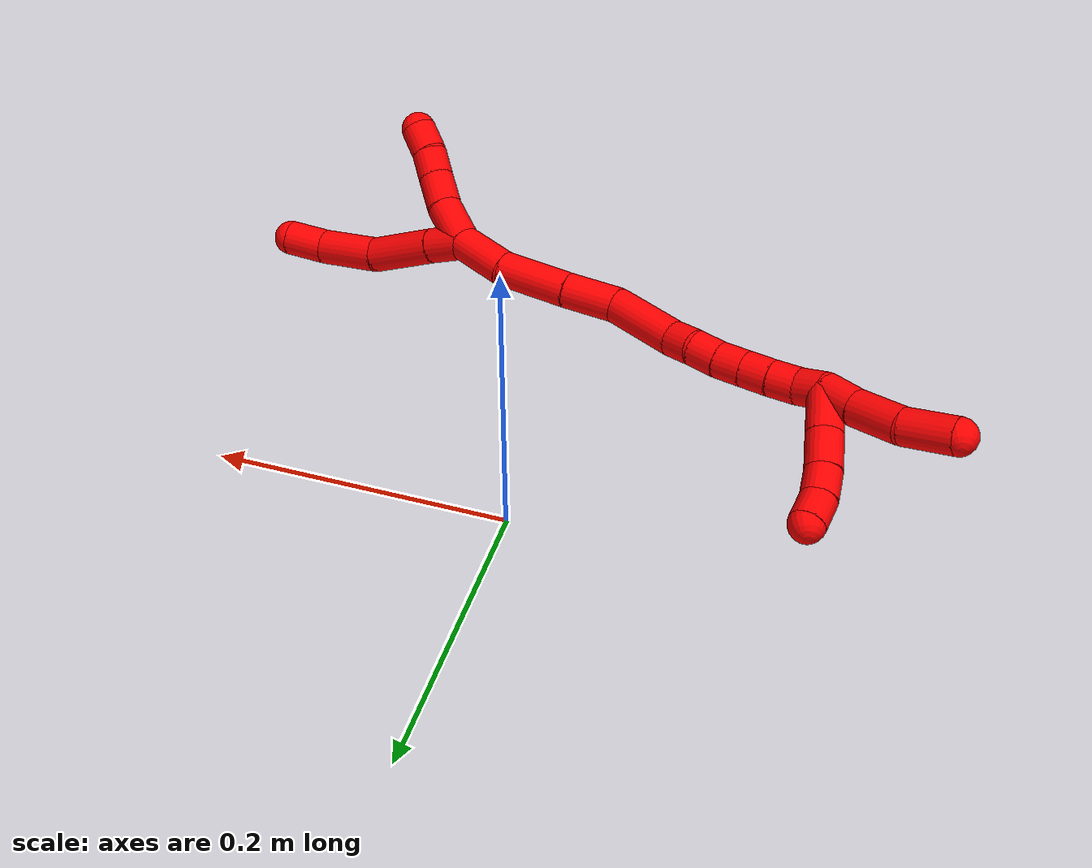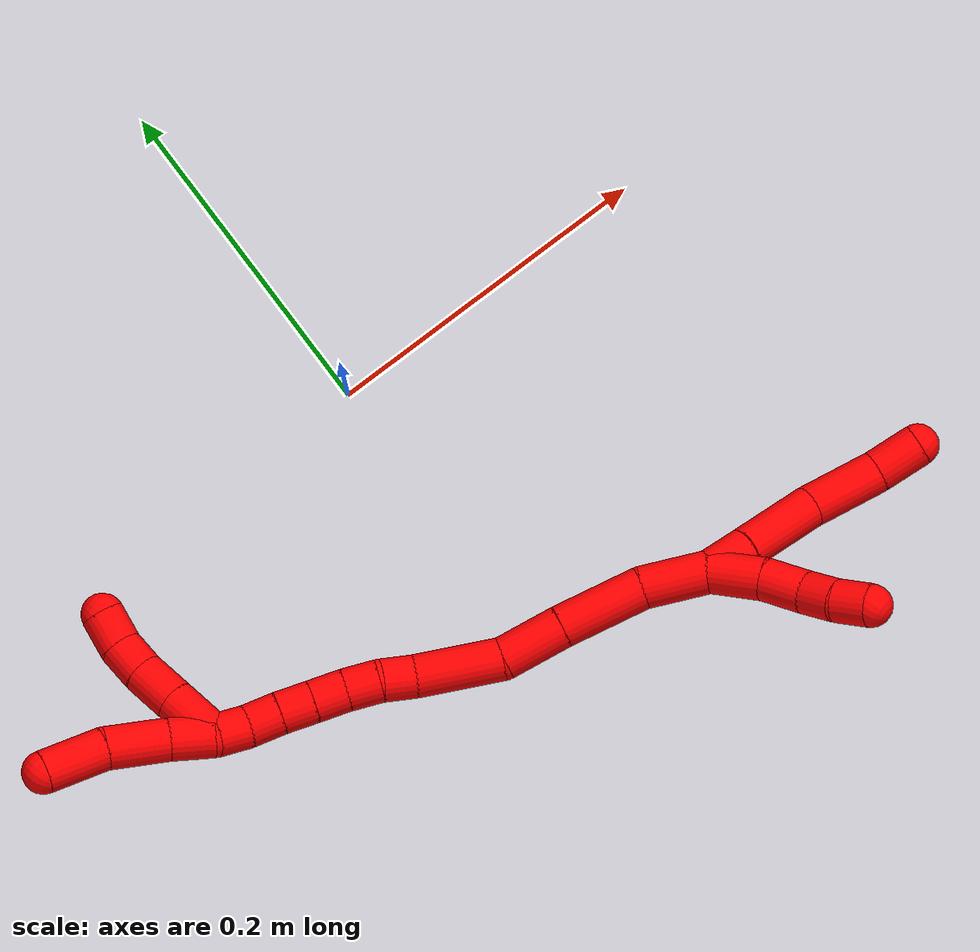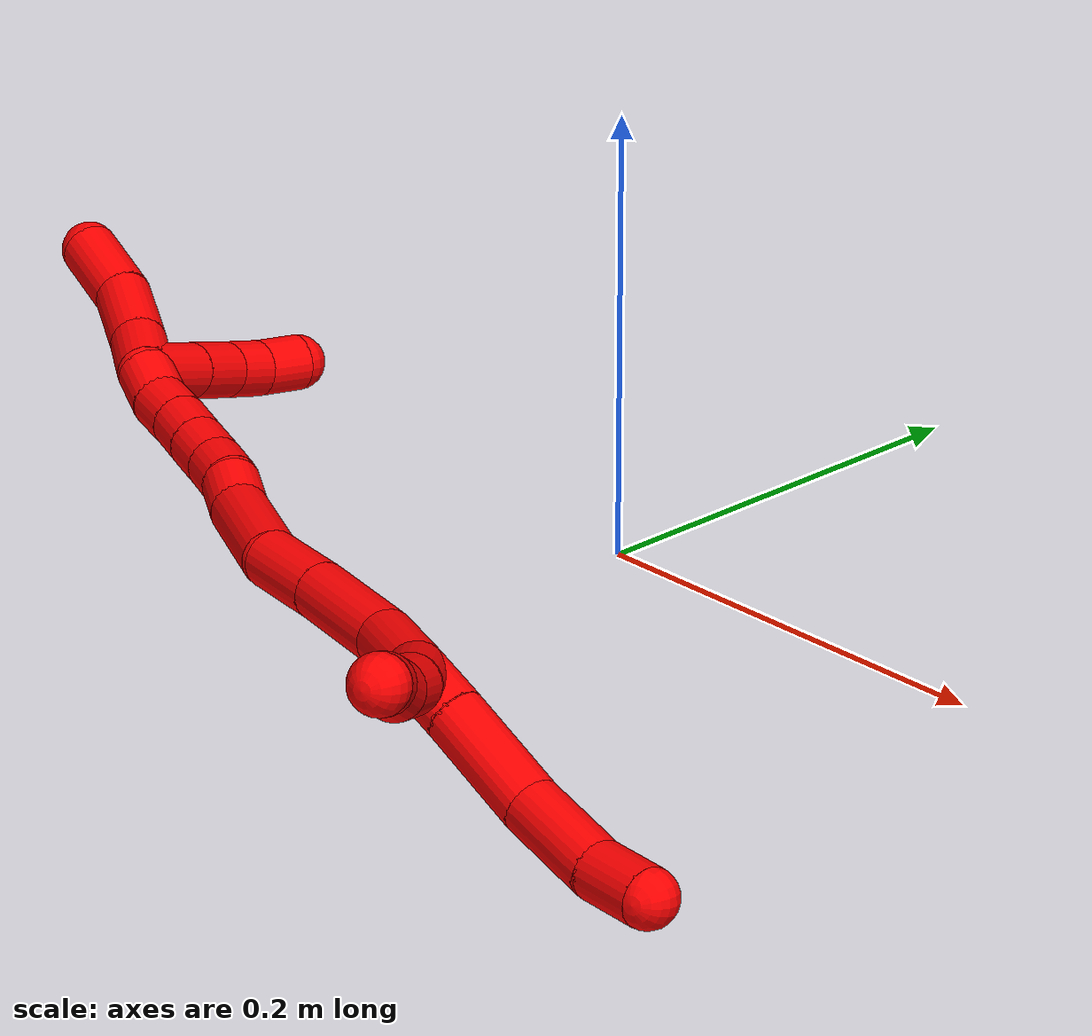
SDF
<sdf version="1.7">
 <world name="default">
  <model name="2">
   <static>0</static>
   <link name="2">
    <collision name="collision-cylinder-e_1_2_8">
     <pose>0.0125 0.001582 -0.003201 -2.6826 1.29258 -2.54097</pose>
     <geometry><cylinder><radius>0.0125</radius><length>0.026001</length></cylinder></geometry>
     <surface>
      <friction><ode><mu>1.16</mu><mu2>1.16</mu2><slip1>0</slip1><slip2>0</slip2></ode></friction>
      <contact><ode><kp>1e+06</kp><kd>1</kd><max_vel>0</max_vel><min_depth>0.001</min_depth></ode></contact>
     </surface>
    </collision>
    <visual name="visual-cylinder-e_1_2_8">
     <pose>0.0125 0.001582 -0.003201 -2.6826 1.29258 -2.54097</pose>
     <geometry><cylinder><radius>0.0125</radius><length>0.026001</length></cylinder></geometry>
     <material><ambient>1 0 0 1</ambient></material>
    </visual>
    <collision name="collision-cylinder-e_2_8_9">
     <pose>0.049139 0.007112 -0.012097 -2.53534 1.29123 -2.35452</pose>
     <geometry><cylinder><radius>0.0125</radius><length>0.050227</length></cylinder></geometry>
     <surface>
      <friction><ode><mu>1.16</mu><mu2>1.16</mu2><slip1>0</slip1><slip2>0</slip2></ode></friction>
      <contact><ode><kp>1e+06</kp><kd>1</kd><max_vel>0</max_vel><min_depth>0.001</min_depth></ode></contact>
     </surface>
    </collision>
    <visual name="visual-cylinder-e_2_8_9">
     <pose>0.049139 0.007112 -0.012097 -2.53534 1.29123 -2.35452</pose>
     <geometry><cylinder><radius>0.0125</radius><length>0.050227</length></cylinder></geometry>
     <material><ambient>1 0 0 1</ambient></material>
    </visual>
    <collision name="collision-cylinder-e_3_9_10">
     <pose>0.094012 0.00978 -0.02642 2.9942 1.17259 2.92019</pose>
     <geometry><cylinder><radius>0.0125</radius><length>0.04499</length></cylinder></geometry>
     <surface>
      <friction><ode><mu>1.16</mu><mu2>1.16</mu2><slip1>0</slip1><slip2>0</slip2></ode></friction>
      <contact><ode><kp>1e+06</kp><kd>1</kd><max_vel>0</max_vel><min_depth>0.001</min_depth></ode></contact>
     </surface>
    </collision>
    <visual name="visual-cylinder-e_3_9_10">
     <pose>0.094012 0.00978 -0.02642 2.9942 1.17259 2.92019</pose>
     <geometry><cylinder><radius>0.0125</radius><length>0.04499</length></cylinder></geometry>
     <material><ambient>1 0 0 1</ambient></material>
    </visual>
    <collision name="collision-cylinder-e_4_10_6">
     <pose>0.12773 0.00486 -0.04008 2.51555 1.12463 2.19266</pose>
     <geometry><cylinder><radius>0.0125</radius><length>0.028783</length></cylinder></geometry>
     <surface>
      <friction><ode><mu>1.16</mu><mu2>1.16</mu2><slip1>0</slip1><slip2>0</slip2></ode></friction>
      <contact><ode><kp>1e+06</kp><kd>1</kd><max_vel>0</max_vel><min_depth>0.001</min_depth></ode></contact>
     </surface>
    </collision>
    <visual name="visual-cylinder-e_4_10_6">
     <pose>0.12773 0.00486 -0.04008 2.51555 1.12463 2.19266</pose>
     <geometry><cylinder><radius>0.0125</radius><length>0.028783</length></cylinder></geometry>
     <material><ambient>1 0 0 1</ambient></material>
    </visual>
    <collision name="collision-cylinder-e_1_2_11">
     <pose>0.006008 -0.004605 -0.01436 2.83127 0.379117 1.77364</pose>
     <geometry><cylinder><radius>0.0125</radius><length>0.032465</length></cylinder></geometry>
     <surface>
      <friction><ode><mu>1.16</mu><mu2>1.16</mu2><slip1>0</slip1><slip2>0</slip2></ode></friction>
      <contact><ode><kp>1e+06</kp><kd>1</kd><max_vel>0</max_vel><min_depth>0.001</min_depth></ode></contact>
     </surface>
    </collision>
    <visual name="visual-cylinder-e_1_2_11">
     <pose>0.006008 -0.004605 -0.01436 2.83127 0.379117 1.77364</pose>
     <geometry><cylinder><radius>0.0125</radius><length>0.032465</length></cylinder></geometry>
     <material><ambient>1 0 0 1</ambient></material>
    </visual>
    <collision name="collision-cylinder-e_2_11_12">
     <pose>0.014686 -0.012793 -0.041003 2.85779 0.205743 1.25149</pose>
     <geometry><cylinder><radius>0.0125</radius><length>0.026142</length></cylinder></geometry>
     <surface>
      <friction><ode><mu>1.16</mu><mu2>1.16</mu2><slip1>0</slip1><slip2>0</slip2></ode></friction>
      <contact><ode><kp>1e+06</kp><kd>1</kd><max_vel>0</max_vel><min_depth>0.001</min_depth></ode></contact>
     </surface>
    </collision>
    <visual name="visual-cylinder-e_2_11_12">
     <pose>0.014686 -0.012793 -0.041003 2.85779 0.205743 1.25149</pose>
     <geometry><cylinder><radius>0.0125</radius><length>0.026142</length></cylinder></geometry>
     <material><ambient>1 0 0 1</ambient></material>
    </visual>
    <collision name="collision-cylinder-e_3_12_13">
     <pose>0.018765 -0.021012 -0.062254 2.66445 0.138625 0.556121</pose>
     <geometry><cylinder><radius>0.0125</radius><length>0.020386</length></cylinder></geometry>
     <surface>
      <friction><ode><mu>1.16</mu><mu2>1.16</mu2><slip1>0</slip1><slip2>0</slip2></ode></friction>
      <contact><ode><kp>1e+06</kp><kd>1</kd><max_vel>0</max_vel><min_depth>0.001</min_depth></ode></contact>
     </surface>
    </collision>
    <visual name="visual-cylinder-e_3_12_13">
     <pose>0.018765 -0.021012 -0.062254 2.66445 0.138625 0.556121</pose>
     <geometry><cylinder><radius>0.0125</radius><length>0.020386</length></cylinder></geometry>
     <material><ambient>1 0 0 1</ambient></material>
    </visual>
    <collision name="collision-cylinder-e_4_13_5">
     <pose>0.023283 -0.029847 -0.080333 2.70969 0.300552 1.20827</pose>
     <geometry><cylinder><radius>0.0125</radius><length>0.021007</length></cylinder></geometry>
     <surface>
      <friction><ode><mu>1.16</mu><mu2>1.16</mu2><slip1>0</slip1><slip2>0</slip2></ode></friction>
      <contact><ode><kp>1e+06</kp><kd>1</kd><max_vel>0</max_vel><min_depth>0.001</min_depth></ode></contact>
     </surface>
    </collision>
    <visual name="visual-cylinder-e_4_13_5">
     <pose>0.023283 -0.029847 -0.080333 2.70969 0.300552 1.20827</pose>
     <geometry><cylinder><radius>0.0125</radius><length>0.021007</length></cylinder></geometry>
     <material><ambient>1 0 0 1</ambient></material>
    </visual>
    <collision name="collision-cylinder-e_1_2_14">
     <pose>-0.014431 0.004383 0.012816 -0.329553 -0.817055 0.143715</pose>
     <geometry><cylinder><radius>0.0125</radius><length>0.039583</length></cylinder></geometry>
     <surface>
      <friction><ode><mu>1.16</mu><mu2>1.16</mu2><slip1>0</slip1><slip2>0</slip2></ode></friction>
      <contact><ode><kp>1e+06</kp><kd>1</kd><max_vel>0</max_vel><min_depth>0.001</min_depth></ode></contact>
     </surface>
    </collision>
    <visual name="visual-cylinder-e_1_2_14">
     <pose>-0.014431 0.004383 0.012816 -0.329553 -0.817055 0.143715</pose>
     <geometry><cylinder><radius>0.0125</radius><length>0.039583</length></cylinder></geometry>
     <material><ambient>1 0 0 1</ambient></material>
    </visual>
    <collision name="collision-cylinder-e_2_14_15">
     <pose>-0.051049 0.014008 0.037277 -0.422931 -1.04853 0.247003</pose>
     <geometry><cylinder><radius>0.0125</radius><length>0.0512</length></cylinder></geometry>
     <surface>
      <friction><ode><mu>1.16</mu><mu2>1.16</mu2><slip1>0</slip1><slip2>0</slip2></ode></friction>
      <contact><ode><kp>1e+06</kp><kd>1</kd><max_vel>0</max_vel><min_depth>0.001</min_depth></ode></contact>
     </surface>
    </collision>
    <visual name="visual-cylinder-e_2_14_15">
     <pose>-0.051049 0.014008 0.037277 -0.422931 -1.04853 0.247003</pose>
     <geometry><cylinder><radius>0.0125</radius><length>0.0512</length></cylinder></geometry>
     <material><ambient>1 0 0 1</ambient></material>
    </visual>
    <collision name="collision-cylinder-e_3_15_16">
     <pose>-0.089954 0.023454 0.056639 -0.498834 -1.08687 0.305362</pose>
     <geometry><cylinder><radius>0.0125</radius><length>0.037775</length></cylinder></geometry>
     <surface>
      <friction><ode><mu>1.16</mu><mu2>1.16</mu2><slip1>0</slip1><slip2>0</slip2></ode></friction>
      <contact><ode><kp>1e+06</kp><kd>1</kd><max_vel>0</max_vel><min_depth>0.001</min_depth></ode></contact>
     </surface>
    </collision>
    <visual name="visual-cylinder-e_3_15_16">
     <pose>-0.089954 0.023454 0.056639 -0.498834 -1.08687 0.305362</pose>
     <geometry><cylinder><radius>0.0125</radius><length>0.037775</length></cylinder></geometry>
     <material><ambient>1 0 0 1</ambient></material>
    </visual>
    <collision name="collision-cylinder-e_4_16_17">
     <pose>-0.125578 0.031131 0.081275 -0.20248 -0.830511 0.089519</pose>
     <geometry><cylinder><radius>0.0125</radius><length>0.051214</length></cylinder></geometry>
     <surface>
      <friction><ode><mu>1.16</mu><mu2>1.16</mu2><slip1>0</slip1><slip2>0</slip2></ode></friction>
      <contact><ode><kp>1e+06</kp><kd>1</kd><max_vel>0</max_vel><min_depth>0.001</min_depth></ode></contact>
     </surface>
    </collision>
    <visual name="visual-cylinder-e_4_16_17">
     <pose>-0.125578 0.031131 0.081275 -0.20248 -0.830511 0.089519</pose>
     <geometry><cylinder><radius>0.0125</radius><length>0.051214</length></cylinder></geometry>
     <material><ambient>1 0 0 1</ambient></material>
    </visual>
    <collision name="collision-cylinder-e_5_17_18">
     <pose>-0.152021 0.033718 0.104753 0.134392 -0.850215 -0.060914</pose>
     <geometry><cylinder><radius>0.0125</radius><length>0.020063</length></cylinder></geometry>
     <surface>
      <friction><ode><mu>1.16</mu><mu2>1.16</mu2><slip1>0</slip1><slip2>0</slip2></ode></friction>
      <contact><ode><kp>1e+06</kp><kd>1</kd><max_vel>0</max_vel><min_depth>0.001</min_depth></ode></contact>
     </surface>
    </collision>
    <visual name="visual-cylinder-e_5_17_18">
     <pose>-0.152021 0.033718 0.104753 0.134392 -0.850215 -0.060914</pose>
     <geometry><cylinder><radius>0.0125</radius><length>0.020063</length></cylinder></geometry>
     <material><ambient>1 0 0 1</ambient></material>
    </visual>
    <collision name="collision-cylinder-e_6_18_19">
     <pose>-0.167455 0.034226 0.117389 -0.225642 -0.902474 0.109698</pose>
     <geometry><cylinder><radius>0.0125</radius><length>0.020122</length></cylinder></geometry>
     <surface>
      <friction><ode><mu>1.16</mu><mu2>1.16</mu2><slip1>0</slip1><slip2>0</slip2></ode></friction>
      <contact><ode><kp>1e+06</kp><kd>1</kd><max_vel>0</max_vel><min_depth>0.001</min_depth></ode></contact>
     </surface>
    </collision>
    <visual name="visual-cylinder-e_6_18_19">
     <pose>-0.167455 0.034226 0.117389 -0.225642 -0.902474 0.109698</pose>
     <geometry><cylinder><radius>0.0125</radius><length>0.020122</length></cylinder></geometry>
     <material><ambient>1 0 0 1</ambient></material>
    </visual>
    <collision name="collision-cylinder-e_7_19_20">
     <pose>-0.183828 0.03649 0.128733 -0.163667 -1.00873 0.090482</pose>
     <geometry><cylinder><radius>0.0125</radius><length>0.020035</length></cylinder></geometry>
     <surface>
      <friction><ode><mu>1.16</mu><mu2>1.16</mu2><slip1>0</slip1><slip2>0</slip2></ode></friction>
      <contact><ode><kp>1e+06</kp><kd>1</kd><max_vel>0</max_vel><min_depth>0.001</min_depth></ode></contact>
     </surface>
    </collision>
    <visual name="visual-cylinder-e_7_19_20">
     <pose>-0.183828 0.03649 0.128733 -0.163667 -1.00873 0.090482</pose>
     <geometry><cylinder><radius>0.0125</radius><length>0.020035</length></cylinder></geometry>
     <material><ambient>1 0 0 1</ambient></material>
    </visual>
    <collision name="collision-cylinder-e_8_20_21">
     <pose>-0.200748 0.038124 0.139306 -0.143026 -1.00513 0.078706</pose>
     <geometry><cylinder><radius>0.0125</radius><length>0.020004</length></cylinder></geometry>
     <surface>
      <friction><ode><mu>1.16</mu><mu2>1.16</mu2><slip1>0</slip1><slip2>0</slip2></ode></friction>
      <contact><ode><kp>1e+06</kp><kd>1</kd><max_vel>0</max_vel><min_depth>0.001</min_depth></ode></contact>
     </surface>
    </collision>
    <visual name="visual-cylinder-e_8_20_21">
     <pose>-0.200748 0.038124 0.139306 -0.143026 -1.00513 0.078706</pose>
     <geometry><cylinder><radius>0.0125</radius><length>0.020004</length></cylinder></geometry>
     <material><ambient>1 0 0 1</ambient></material>
    </visual>
    <collision name="collision-cylinder-e_9_21_22">
     <pose>-0.217913 0.039844 0.149415 -0.196346 -1.05914 0.115172</pose>
     <geometry><cylinder><radius>0.0125</radius><length>0.020004</length></cylinder></geometry>
     <surface>
      <friction><ode><mu>1.16</mu><mu2>1.16</mu2><slip1>0</slip1><slip2>0</slip2></ode></friction>
      <contact><ode><kp>1e+06</kp><kd>1</kd><max_vel>0</max_vel><min_depth>0.001</min_depth></ode></contact>
     </surface>
    </collision>
    <visual name="visual-cylinder-e_9_21_22">
     <pose>-0.217913 0.039844 0.149415 -0.196346 -1.05914 0.115172</pose>
     <geometry><cylinder><radius>0.0125</radius><length>0.020004</length></cylinder></geometry>
     <material><ambient>1 0 0 1</ambient></material>
    </visual>
    <collision name="collision-cylinder-e_10_22_1">
     <pose>-0.235151 0.039206 0.159212 0.308798 -1.01904 -0.173483</pose>
     <geometry><cylinder><radius>0.0125</radius><length>0.02</length></cylinder></geometry>
     <surface>
      <friction><ode><mu>1.16</mu><mu2>1.16</mu2><slip1>0</slip1><slip2>0</slip2></ode></friction>
      <contact><ode><kp>1e+06</kp><kd>1</kd><max_vel>0</max_vel><min_depth>0.001</min_depth></ode></contact>
     </surface>
    </collision>
    <visual name="visual-cylinder-e_10_22_1">
     <pose>-0.235151 0.039206 0.159212 0.308798 -1.01904 -0.173483</pose>
     <geometry><cylinder><radius>0.0125</radius><length>0.02</length></cylinder></geometry>
     <material><ambient>1 0 0 1</ambient></material>
    </visual>
    <collision name="collision-cylinder-e_1_1_23">
     <pose>-0.252769 0.037152 0.173389 0.050214 -0.780328 -0.020654</pose>
     <geometry><cylinder><radius>0.0125</radius><length>0.025874</length></cylinder></geometry>
     <surface>
      <friction><ode><mu>1.16</mu><mu2>1.16</mu2><slip1>0</slip1><slip2>0</slip2></ode></friction>
      <contact><ode><kp>1e+06</kp><kd>1</kd><max_vel>0</max_vel><min_depth>0.001</min_depth></ode></contact>
     </surface>
    </collision>
    <visual name="visual-cylinder-e_1_1_23">
     <pose>-0.252769 0.037152 0.173389 0.050214 -0.780328 -0.020654</pose>
     <geometry><cylinder><radius>0.0125</radius><length>0.025874</length></cylinder></geometry>
     <material><ambient>1 0 0 1</ambient></material>
    </visual>
    <collision name="collision-cylinder-e_2_23_24">
     <pose>-0.275938 0.034931 0.194357 0.14819 -0.86802 -0.068782</pose>
     <geometry><cylinder><radius>0.0125</radius><length>0.036874</length></cylinder></geometry>
     <surface>
      <friction><ode><mu>1.16</mu><mu2>1.16</mu2><slip1>0</slip1><slip2>0</slip2></ode></friction>
      <contact><ode><kp>1e+06</kp><kd>1</kd><max_vel>0</max_vel><min_depth>0.001</min_depth></ode></contact>
     </surface>
    </collision>
    <visual name="visual-cylinder-e_2_23_24">
     <pose>-0.275938 0.034931 0.194357 0.14819 -0.86802 -0.068782</pose>
     <geometry><cylinder><radius>0.0125</radius><length>0.036874</length></cylinder></geometry>
     <material><ambient>1 0 0 1</ambient></material>
    </visual>
    <collision name="collision-cylinder-e_3_24_4">
     <pose>-0.306616 0.03214 0.214509 0.12261 -1.10116 -0.075329</pose>
     <geometry><cylinder><radius>0.0125</radius><length>0.037252</length></cylinder></geometry>
     <surface>
      <friction><ode><mu>1.16</mu><mu2>1.16</mu2><slip1>0</slip1><slip2>0</slip2></ode></friction>
      <contact><ode><kp>1e+06</kp><kd>1</kd><max_vel>0</max_vel><min_depth>0.001</min_depth></ode></contact>
     </surface>
    </collision>
    <visual name="visual-cylinder-e_3_24_4">
     <pose>-0.306616 0.03214 0.214509 0.12261 -1.10116 -0.075329</pose>
     <geometry><cylinder><radius>0.0125</radius><length>0.037252</length></cylinder></geometry>
     <material><ambient>1 0 0 1</ambient></material>
    </visual>
    <collision name="collision-cylinder-e_1_1_25">
     <pose>-0.241757 0.039345 0.179951 -0.109566 0.120042 -0.006591</pose>
     <geometry><cylinder><radius>0.0125</radius><length>0.031909</length></cylinder></geometry>
     <surface>
      <friction><ode><mu>1.16</mu><mu2>1.16</mu2><slip1>0</slip1><slip2>0</slip2></ode></friction>
      <contact><ode><kp>1e+06</kp><kd>1</kd><max_vel>0</max_vel><min_depth>0.001</min_depth></ode></contact>
     </surface>
    </collision>
    <visual name="visual-cylinder-e_1_1_25">
     <pose>-0.241757 0.039345 0.179951 -0.109566 0.120042 -0.006591</pose>
     <geometry><cylinder><radius>0.0125</radius><length>0.031909</length></cylinder></geometry>
     <material><ambient>1 0 0 1</ambient></material>
    </visual>
    <collision name="collision-cylinder-e_2_25_26">
     <pose>-0.238334 0.042425 0.208513 -0.104748 0.116778 -0.006129</pose>
     <geometry><cylinder><radius>0.0125</radius><length>0.025952</length></cylinder></geometry>
     <surface>
      <friction><ode><mu>1.16</mu><mu2>1.16</mu2><slip1>0</slip1><slip2>0</slip2></ode></friction>
      <contact><ode><kp>1e+06</kp><kd>1</kd><max_vel>0</max_vel><min_depth>0.001</min_depth></ode></contact>
     </surface>
    </collision>
    <visual name="visual-cylinder-e_2_25_26">
     <pose>-0.238334 0.042425 0.208513 -0.104748 0.116778 -0.006129</pose>
     <geometry><cylinder><radius>0.0125</radius><length>0.025952</length></cylinder></geometry>
     <material><ambient>1 0 0 1</ambient></material>
    </visual>
    <collision name="collision-cylinder-e_3_26_27">
     <pose>-0.234605 0.044026 0.231418 -0.025194 0.216267 -0.002735</pose>
     <geometry><cylinder><radius>0.0125</radius><length>0.020663</length></cylinder></geometry>
     <surface>
      <friction><ode><mu>1.16</mu><mu2>1.16</mu2><slip1>0</slip1><slip2>0</slip2></ode></friction>
      <contact><ode><kp>1e+06</kp><kd>1</kd><max_vel>0</max_vel><min_depth>0.001</min_depth></ode></contact>
     </surface>
    </collision>
    <visual name="visual-cylinder-e_3_26_27">
     <pose>-0.234605 0.044026 0.231418 -0.025194 0.216267 -0.002735</pose>
     <geometry><cylinder><radius>0.0125</radius><length>0.020663</length></cylinder></geometry>
     <material><ambient>1 0 0 1</ambient></material>
    </visual>
    <collision name="collision-cylinder-e_4_27_3">
     <pose>-0.228538 0.042328 0.251337 0.196077 0.3667 0.036472</pose>
     <geometry><cylinder><radius>0.0125</radius><length>0.021476</length></cylinder></geometry>
     <surface>
      <friction><ode><mu>1.16</mu><mu2>1.16</mu2><slip1>0</slip1><slip2>0</slip2></ode></friction>
      <contact><ode><kp>1e+06</kp><kd>1</kd><max_vel>0</max_vel><min_depth>0.001</min_depth></ode></contact>
     </surface>
    </collision>
    <visual name="visual-cylinder-e_4_27_3">
     <pose>-0.228538 0.042328 0.251337 0.196077 0.3667 0.036472</pose>
     <geometry><cylinder><radius>0.0125</radius><length>0.021476</length></cylinder></geometry>
     <material><ambient>1 0 0 1</ambient></material>
    </visual>
    <collision name="collision-sphere-3">
     <pose>-0.224688 0.040375 0.261169 0 -0 0</pose>
     <geometry><sphere><radius>0.0125</radius></sphere></geometry>
     <surface>
      <friction><ode><mu>1.16</mu><mu2>1.16</mu2><slip1>0</slip1><slip2>0</slip2></ode></friction>
      <contact><ode><kp>1e+06</kp><kd>1</kd><max_vel>0</max_vel><min_depth>0.001</min_depth></ode></contact>
     </surface>
    </collision>
    <visual name="visual-sphere-3">
     <pose>-0.224688 0.040375 0.261169 0 -0 0</pose>
     <geometry><sphere><radius>0.0125</radius></sphere></geometry>
     <material><ambient>1 0 0 1</ambient></material>
    </visual>
    <collision name="collision-sphere-27">
     <pose>-0.232388 0.04428 0.241505 0 -0 0</pose>
     <geometry><sphere><radius>0.0125</radius></sphere></geometry>
     <surface>
      <friction><ode><mu>1.16</mu><mu2>1.16</mu2><slip1>0</slip1><slip2>0</slip2></ode></friction>
      <contact><ode><kp>1e+06</kp><kd>1</kd><max_vel>0</max_vel><min_depth>0.001</min_depth></ode></contact>
     </surface>
    </collision>
    <visual name="visual-sphere-27">
     <pose>-0.232388 0.04428 0.241505 0 -0 0</pose>
     <geometry><sphere><radius>0.0125</radius></sphere></geometry>
     <material><ambient>1 0 0 1</ambient></material>
    </visual>
    <collision name="collision-sphere-26">
     <pose>-0.236822 0.043772 0.22133 0 -0 0</pose>
     <geometry><sphere><radius>0.0125</radius></sphere></geometry>
     <surface>
      <friction><ode><mu>1.16</mu><mu2>1.16</mu2><slip1>0</slip1><slip2>0</slip2></ode></friction>
      <contact><ode><kp>1e+06</kp><kd>1</kd><max_vel>0</max_vel><min_depth>0.001</min_depth></ode></contact>
     </surface>
    </collision>
    <visual name="visual-sphere-26">
     <pose>-0.236822 0.043772 0.22133 0 -0 0</pose>
     <geometry><sphere><radius>0.0125</radius></sphere></geometry>
     <material><ambient>1 0 0 1</ambient></material>
    </visual>
    <collision name="collision-sphere-25">
     <pose>-0.239846 0.041077 0.195696 0 -0 0</pose>
     <geometry><sphere><radius>0.0125</radius></sphere></geometry>
     <surface>
      <friction><ode><mu>1.16</mu><mu2>1.16</mu2><slip1>0</slip1><slip2>0</slip2></ode></friction>
      <contact><ode><kp>1e+06</kp><kd>1</kd><max_vel>0</max_vel><min_depth>0.001</min_depth></ode></contact>
     </surface>
    </collision>
    <visual name="visual-sphere-25">
     <pose>-0.239846 0.041077 0.195696 0 -0 0</pose>
     <geometry><sphere><radius>0.0125</radius></sphere></geometry>
     <material><ambient>1 0 0 1</ambient></material>
    </visual>
    <collision name="collision-sphere-4">
     <pose>-0.323225 0.031109 0.222876 0 -0 0</pose>
     <geometry><sphere><radius>0.0125</radius></sphere></geometry>
     <surface>
      <friction><ode><mu>1.16</mu><mu2>1.16</mu2><slip1>0</slip1><slip2>0</slip2></ode></friction>
      <contact><ode><kp>1e+06</kp><kd>1</kd><max_vel>0</max_vel><min_depth>0.001</min_depth></ode></contact>
     </surface>
    </collision>
    <visual name="visual-sphere-4">
     <pose>-0.323225 0.031109 0.222876 0 -0 0</pose>
     <geometry><sphere><radius>0.0125</radius></sphere></geometry>
     <material><ambient>1 0 0 1</ambient></material>
    </visual>
    <collision name="collision-sphere-24">
     <pose>-0.290007 0.033171 0.206143 0 -0 0</pose>
     <geometry><sphere><radius>0.0125</radius></sphere></geometry>
     <surface>
      <friction><ode><mu>1.16</mu><mu2>1.16</mu2><slip1>0</slip1><slip2>0</slip2></ode></friction>
      <contact><ode><kp>1e+06</kp><kd>1</kd><max_vel>0</max_vel><min_depth>0.001</min_depth></ode></contact>
     </surface>
    </collision>
    <visual name="visual-sphere-24">
     <pose>-0.290007 0.033171 0.206143 0 -0 0</pose>
     <geometry><sphere><radius>0.0125</radius></sphere></geometry>
     <material><ambient>1 0 0 1</ambient></material>
    </visual>
    <collision name="collision-sphere-23">
     <pose>-0.26187 0.03669 0.182572 0 -0 0</pose>
     <geometry><sphere><radius>0.0125</radius></sphere></geometry>
     <surface>
      <friction><ode><mu>1.16</mu><mu2>1.16</mu2><slip1>0</slip1><slip2>0</slip2></ode></friction>
      <contact><ode><kp>1e+06</kp><kd>1</kd><max_vel>0</max_vel><min_depth>0.001</min_depth></ode></contact>
     </surface>
    </collision>
    <visual name="visual-sphere-23">
     <pose>-0.26187 0.03669 0.182572 0 -0 0</pose>
     <geometry><sphere><radius>0.0125</radius></sphere></geometry>
     <material><ambient>1 0 0 1</ambient></material>
    </visual>
    <collision name="collision-sphere-1">
     <pose>-0.243667 0.037613 0.164206 0 -0 0</pose>
     <geometry><sphere><radius>0.0125</radius></sphere></geometry>
     <surface>
      <friction><ode><mu>1.16</mu><mu2>1.16</mu2><slip1>0</slip1><slip2>0</slip2></ode></friction>
      <contact><ode><kp>1e+06</kp><kd>1</kd><max_vel>0</max_vel><min_depth>0.001</min_depth></ode></contact>
     </surface>
    </collision>
    <visual name="visual-sphere-1">
     <pose>-0.243667 0.037613 0.164206 0 -0 0</pose>
     <geometry><sphere><radius>0.0125</radius></sphere></geometry>
     <material><ambient>1 0 0 1</ambient></material>
    </visual>
    <collision name="collision-sphere-22">
     <pose>-0.226635 0.040799 0.154218 0 -0 0</pose>
     <geometry><sphere><radius>0.0125</radius></sphere></geometry>
     <surface>
      <friction><ode><mu>1.16</mu><mu2>1.16</mu2><slip1>0</slip1><slip2>0</slip2></ode></friction>
      <contact><ode><kp>1e+06</kp><kd>1</kd><max_vel>0</max_vel><min_depth>0.001</min_depth></ode></contact>
     </surface>
    </collision>
    <visual name="visual-sphere-22">
     <pose>-0.226635 0.040799 0.154218 0 -0 0</pose>
     <geometry><sphere><radius>0.0125</radius></sphere></geometry>
     <material><ambient>1 0 0 1</ambient></material>
    </visual>
    <collision name="collision-sphere-21">
     <pose>-0.209192 0.038888 0.144612 0 -0 0</pose>
     <geometry><sphere><radius>0.0125</radius></sphere></geometry>
     <surface>
      <friction><ode><mu>1.16</mu><mu2>1.16</mu2><slip1>0</slip1><slip2>0</slip2></ode></friction>
      <contact><ode><kp>1e+06</kp><kd>1</kd><max_vel>0</max_vel><min_depth>0.001</min_depth></ode></contact>
     </surface>
    </collision>
    <visual name="visual-sphere-21">
     <pose>-0.209192 0.038888 0.144612 0 -0 0</pose>
     <geometry><sphere><radius>0.0125</radius></sphere></geometry>
     <material><ambient>1 0 0 1</ambient></material>
    </visual>
    <collision name="collision-sphere-11">
     <pose>0.012015 -0.00921 -0.02872 0 -0 0</pose>
     <geometry><sphere><radius>0.0125</radius></sphere></geometry>
     <surface>
      <friction><ode><mu>1.16</mu><mu2>1.16</mu2><slip1>0</slip1><slip2>0</slip2></ode></friction>
      <contact><ode><kp>1e+06</kp><kd>1</kd><max_vel>0</max_vel><min_depth>0.001</min_depth></ode></contact>
     </surface>
    </collision>
    <visual name="visual-sphere-11">
     <pose>0.012015 -0.00921 -0.02872 0 -0 0</pose>
     <geometry><sphere><radius>0.0125</radius></sphere></geometry>
     <material><ambient>1 0 0 1</ambient></material>
    </visual>
    <collision name="collision-sphere-6">
     <pose>0.140712 0.001221 -0.045112 0 -0 0</pose>
     <geometry><sphere><radius>0.0125</radius></sphere></geometry>
     <surface>
      <friction><ode><mu>1.16</mu><mu2>1.16</mu2><slip1>0</slip1><slip2>0</slip2></ode></friction>
      <contact><ode><kp>1e+06</kp><kd>1</kd><max_vel>0</max_vel><min_depth>0.001</min_depth></ode></contact>
     </surface>
    </collision>
    <visual name="visual-sphere-6">
     <pose>0.140712 0.001221 -0.045112 0 -0 0</pose>
     <geometry><sphere><radius>0.0125</radius></sphere></geometry>
     <material><ambient>1 0 0 1</ambient></material>
    </visual>
    <collision name="collision-sphere-10">
     <pose>0.114747 0.008499 -0.035048 0 -0 0</pose>
     <geometry><sphere><radius>0.0125</radius></sphere></geometry>
     <surface>
      <friction><ode><mu>1.16</mu><mu2>1.16</mu2><slip1>0</slip1><slip2>0</slip2></ode></friction>
      <contact><ode><kp>1e+06</kp><kd>1</kd><max_vel>0</max_vel><min_depth>0.001</min_depth></ode></contact>
     </surface>
    </collision>
    <visual name="visual-sphere-10">
     <pose>0.114747 0.008499 -0.035048 0 -0 0</pose>
     <geometry><sphere><radius>0.0125</radius></sphere></geometry>
     <material><ambient>1 0 0 1</ambient></material>
    </visual>
    <collision name="collision-sphere-9">
     <pose>0.073277 0.011061 -0.017791 0 -0 0</pose>
     <geometry><sphere><radius>0.0125</radius></sphere></geometry>
     <surface>
      <friction><ode><mu>1.16</mu><mu2>1.16</mu2><slip1>0</slip1><slip2>0</slip2></ode></friction>
      <contact><ode><kp>1e+06</kp><kd>1</kd><max_vel>0</max_vel><min_depth>0.001</min_depth></ode></contact>
     </surface>
    </collision>
    <visual name="visual-sphere-9">
     <pose>0.073277 0.011061 -0.017791 0 -0 0</pose>
     <geometry><sphere><radius>0.0125</radius></sphere></geometry>
     <material><ambient>1 0 0 1</ambient></material>
    </visual>
    <collision name="collision-sphere-2">
     <geometry><sphere><radius>0.0125</radius></sphere></geometry>
     <surface>
      <friction><ode><mu>1.16</mu><mu2>1.16</mu2><slip1>0</slip1><slip2>0</slip2></ode></friction>
      <contact><ode><kp>1e+06</kp><kd>1</kd><max_vel>0</max_vel><min_depth>0.001</min_depth></ode></contact>
     </surface>
    </collision>
    <visual name="visual-sphere-2">
     <geometry><sphere><radius>0.0125</radius></sphere></geometry>
     <material><ambient>1 0 0 1</ambient></material>
    </visual>
    <collision name="collision-sphere-19">
     <pose>-0.175352 0.03562 0.123465 0 -0 0</pose>
     <geometry><sphere><radius>0.0125</radius></sphere></geometry>
     <surface>
      <friction><ode><mu>1.16</mu><mu2>1.16</mu2><slip1>0</slip1><slip2>0</slip2></ode></friction>
      <contact><ode><kp>1e+06</kp><kd>1</kd><max_vel>0</max_vel><min_depth>0.001</min_depth></ode></contact>
     </surface>
    </collision>
    <visual name="visual-sphere-19">
     <pose>-0.175352 0.03562 0.123465 0 -0 0</pose>
     <geometry><sphere><radius>0.0125</radius></sphere></geometry>
     <material><ambient>1 0 0 1</ambient></material>
    </visual>
    <collision name="collision-sphere-8">
     <pose>0.025001 0.003164 -0.006402 0 -0 0</pose>
     <geometry><sphere><radius>0.0125</radius></sphere></geometry>
     <surface>
      <friction><ode><mu>1.16</mu><mu2>1.16</mu2><slip1>0</slip1><slip2>0</slip2></ode></friction>
      <contact><ode><kp>1e+06</kp><kd>1</kd><max_vel>0</max_vel><min_depth>0.001</min_depth></ode></contact>
     </surface>
    </collision>
    <visual name="visual-sphere-8">
     <pose>0.025001 0.003164 -0.006402 0 -0 0</pose>
     <geometry><sphere><radius>0.0125</radius></sphere></geometry>
     <material><ambient>1 0 0 1</ambient></material>
    </visual>
    <collision name="collision-sphere-12">
     <pose>0.017356 -0.016376 -0.053287 0 -0 0</pose>
     <geometry><sphere><radius>0.0125</radius></sphere></geometry>
     <surface>
      <friction><ode><mu>1.16</mu><mu2>1.16</mu2><slip1>0</slip1><slip2>0</slip2></ode></friction>
      <contact><ode><kp>1e+06</kp><kd>1</kd><max_vel>0</max_vel><min_depth>0.001</min_depth></ode></contact>
     </surface>
    </collision>
    <visual name="visual-sphere-12">
     <pose>0.017356 -0.016376 -0.053287 0 -0 0</pose>
     <geometry><sphere><radius>0.0125</radius></sphere></geometry>
     <material><ambient>1 0 0 1</ambient></material>
    </visual>
    <collision name="collision-sphere-13">
     <pose>0.020173 -0.025648 -0.071222 0 -0 0</pose>
     <geometry><sphere><radius>0.0125</radius></sphere></geometry>
     <surface>
      <friction><ode><mu>1.16</mu><mu2>1.16</mu2><slip1>0</slip1><slip2>0</slip2></ode></friction>
      <contact><ode><kp>1e+06</kp><kd>1</kd><max_vel>0</max_vel><min_depth>0.001</min_depth></ode></contact>
     </surface>
    </collision>
    <visual name="visual-sphere-13">
     <pose>0.020173 -0.025648 -0.071222 0 -0 0</pose>
     <geometry><sphere><radius>0.0125</radius></sphere></geometry>
     <material><ambient>1 0 0 1</ambient></material>
    </visual>
    <collision name="collision-sphere-5">
     <pose>0.026392 -0.034047 -0.089444 0 -0 0</pose>
     <geometry><sphere><radius>0.0125</radius></sphere></geometry>
     <surface>
      <friction><ode><mu>1.16</mu><mu2>1.16</mu2><slip1>0</slip1><slip2>0</slip2></ode></friction>
      <contact><ode><kp>1e+06</kp><kd>1</kd><max_vel>0</max_vel><min_depth>0.001</min_depth></ode></contact>
     </surface>
    </collision>
    <visual name="visual-sphere-5">
     <pose>0.026392 -0.034047 -0.089444 0 -0 0</pose>
     <geometry><sphere><radius>0.0125</radius></sphere></geometry>
     <material><ambient>1 0 0 1</ambient></material>
    </visual>
    <collision name="collision-sphere-14">
     <pose>-0.028862 0.008767 0.025632 0 -0 0</pose>
     <geometry><sphere><radius>0.0125</radius></sphere></geometry>
     <surface>
      <friction><ode><mu>1.16</mu><mu2>1.16</mu2><slip1>0</slip1><slip2>0</slip2></ode></friction>
      <contact><ode><kp>1e+06</kp><kd>1</kd><max_vel>0</max_vel><min_depth>0.001</min_depth></ode></contact>
     </surface>
    </collision>
    <visual name="visual-sphere-14">
     <pose>-0.028862 0.008767 0.025632 0 -0 0</pose>
     <geometry><sphere><radius>0.0125</radius></sphere></geometry>
     <material><ambient>1 0 0 1</ambient></material>
    </visual>
    <collision name="collision-sphere-15">
     <pose>-0.073236 0.01925 0.048922 0 -0 0</pose>
     <geometry><sphere><radius>0.0125</radius></sphere></geometry>
     <surface>
      <friction><ode><mu>1.16</mu><mu2>1.16</mu2><slip1>0</slip1><slip2>0</slip2></ode></friction>
      <contact><ode><kp>1e+06</kp><kd>1</kd><max_vel>0</max_vel><min_depth>0.001</min_depth></ode></contact>
     </surface>
    </collision>
    <visual name="visual-sphere-15">
     <pose>-0.073236 0.01925 0.048922 0 -0 0</pose>
     <geometry><sphere><radius>0.0125</radius></sphere></geometry>
     <material><ambient>1 0 0 1</ambient></material>
    </visual>
    <collision name="collision-sphere-16">
     <pose>-0.106673 0.027658 0.064356 0 -0 0</pose>
     <geometry><sphere><radius>0.0125</radius></sphere></geometry>
     <surface>
      <friction><ode><mu>1.16</mu><mu2>1.16</mu2><slip1>0</slip1><slip2>0</slip2></ode></friction>
      <contact><ode><kp>1e+06</kp><kd>1</kd><max_vel>0</max_vel><min_depth>0.001</min_depth></ode></contact>
     </surface>
    </collision>
    <visual name="visual-sphere-16">
     <pose>-0.106673 0.027658 0.064356 0 -0 0</pose>
     <geometry><sphere><radius>0.0125</radius></sphere></geometry>
     <material><ambient>1 0 0 1</ambient></material>
    </visual>
    <collision name="collision-sphere-17">
     <pose>-0.144483 0.034604 0.098194 0 -0 0</pose>
     <geometry><sphere><radius>0.0125</radius></sphere></geometry>
     <surface>
      <friction><ode><mu>1.16</mu><mu2>1.16</mu2><slip1>0</slip1><slip2>0</slip2></ode></friction>
      <contact><ode><kp>1e+06</kp><kd>1</kd><max_vel>0</max_vel><min_depth>0.001</min_depth></ode></contact>
     </surface>
    </collision>
    <visual name="visual-sphere-17">
     <pose>-0.144483 0.034604 0.098194 0 -0 0</pose>
     <geometry><sphere><radius>0.0125</radius></sphere></geometry>
     <material><ambient>1 0 0 1</ambient></material>
    </visual>
    <collision name="collision-sphere-18">
     <pose>-0.159559 0.032831 0.111312 0 -0 0</pose>
     <geometry><sphere><radius>0.0125</radius></sphere></geometry>
     <surface>
      <friction><ode><mu>1.16</mu><mu2>1.16</mu2><slip1>0</slip1><slip2>0</slip2></ode></friction>
      <contact><ode><kp>1e+06</kp><kd>1</kd><max_vel>0</max_vel><min_depth>0.001</min_depth></ode></contact>
     </surface>
    </collision>
    <visual name="visual-sphere-18">
     <pose>-0.159559 0.032831 0.111312 0 -0 0</pose>
     <geometry><sphere><radius>0.0125</radius></sphere></geometry>
     <material><ambient>1 0 0 1</ambient></material>
    </visual>
    <collision name="collision-sphere-20">
     <pose>-0.192304 0.03736 0.134 0 -0 0</pose>
     <geometry><sphere><radius>0.0125</radius></sphere></geometry>
     <surface>
      <friction><ode><mu>1.16</mu><mu2>1.16</mu2><slip1>0</slip1><slip2>0</slip2></ode></friction>
      <contact><ode><kp>1e+06</kp><kd>1</kd><max_vel>0</max_vel><min_depth>0.001</min_depth></ode></contact>
     </surface>
    </collision>
    <visual name="visual-sphere-20">
     <pose>-0.192304 0.03736 0.134 0 -0 0</pose>
     <geometry><sphere><radius>0.0125</radius></sphere></geometry>
     <material><ambient>1 0 0 1</ambient></material>
    </visual>
    <inertial>
     <pose>-0.101117 0.019829 0.077559 0 -0 0</pose>
     <mass>0.75</mass>
     <inertia><ixx>3.9e-05</ixx><ixy>0</ixy><ixz>0</ixz><iyy>0.000107</iyy><iyz>0</iyz><izz>2.9e-05</izz></inertia>
    </inertial>
   </link>
   <pose>0.101951 -0.20806 0.049549 -1.75762 0.323631 0.22456</pose>
  </model>
 </world>
</sdf>
